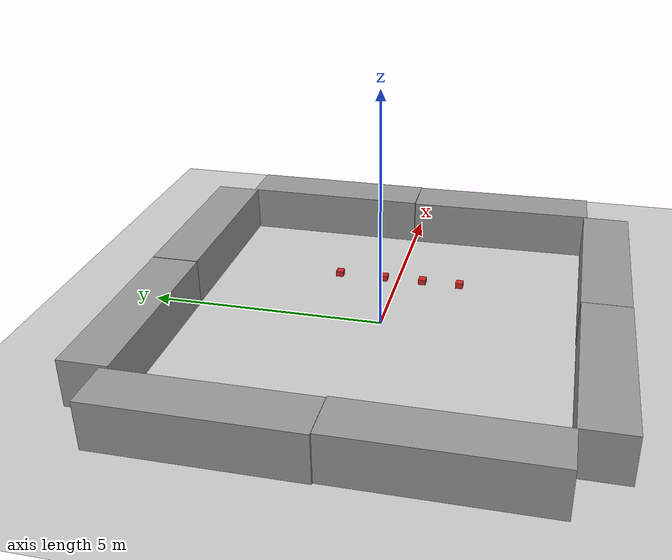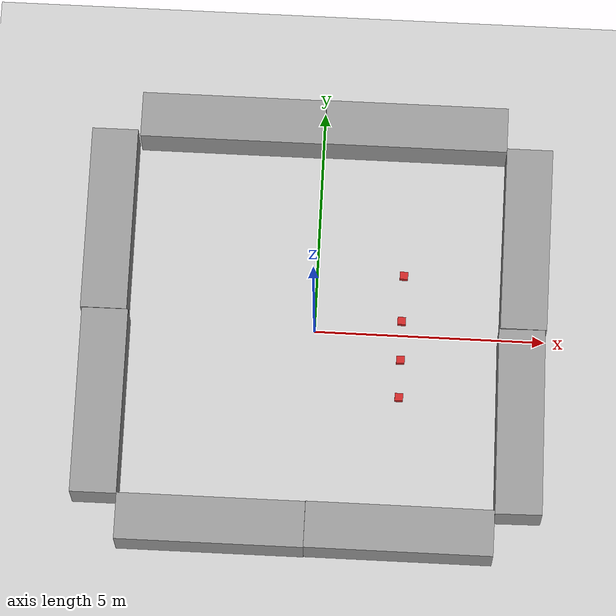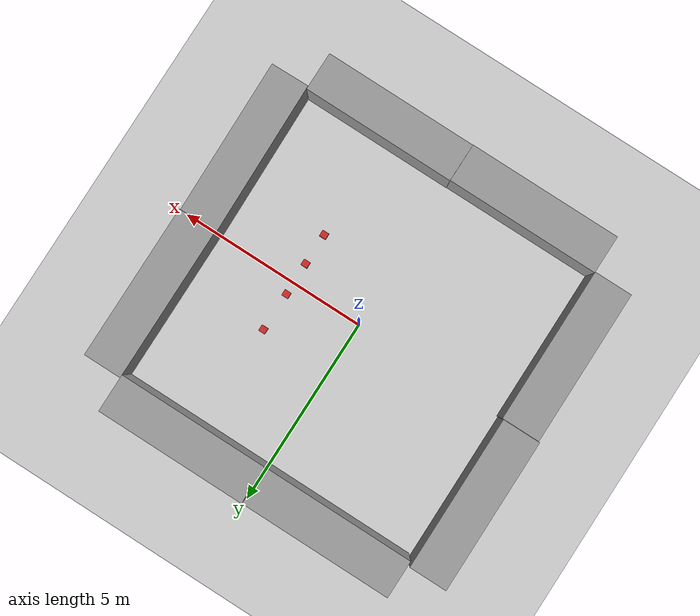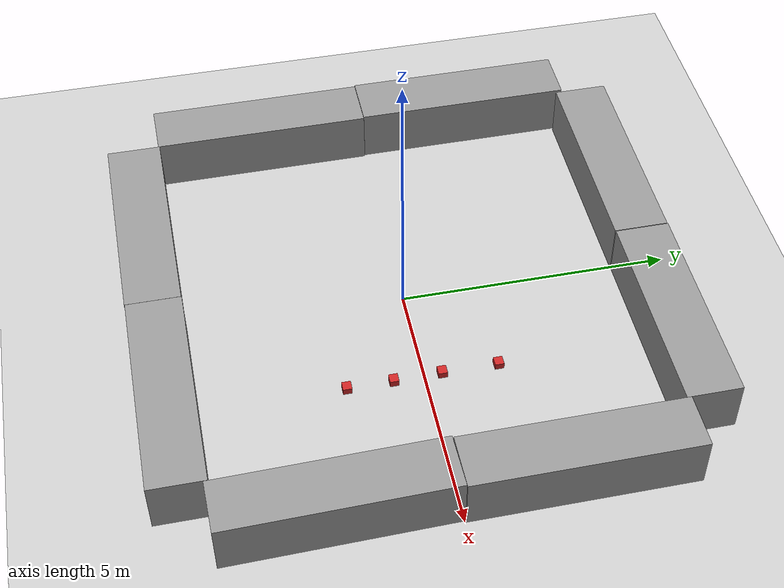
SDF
<sdf version="1.7">
 <world name="default">
  <light name="sun" type="directional">
   <cast_shadows>0</cast_shadows>
   <pose>0 0 10 0 -0 0</pose>
   <diffuse>0.8 0.8 0.8 1</diffuse>
   <specular>0.2 0.2 0.2 1</specular>
   <attenuation>
    <range>1000</range>
    <constant>0.9</constant>
    <linear>0.01</linear>
    <quadratic>0.001</quadratic>
   </attenuation>
   <direction>-0.5 0.1 -0.9</direction>
   <spot><inner_angle>0</inner_angle><outer_angle>0</outer_angle><falloff>0</falloff></spot>
  </light>
  <model name="ground_plane">
   <static>1</static>
   <link name="link">
    <collision name="collision">
     <geometry><plane><normal>0 0 1</normal><size>100 100</size></plane></geometry>
     <surface><friction><ode><mu>100</mu><mu2>50</mu2></ode></friction></surface>
    </collision>
    <visual name="visual">
     <cast_shadows>0</cast_shadows>
     <geometry><plane><normal>0 0 1</normal><size>100 100</size></plane></geometry>
     <material>
      <script><uri>file://media/materials/scripts/gazebo.material</uri><name>Gazebo/Grey</name></script>
     </material>
    </visual>
   </link>
  </model>
  <gravity>0 0 -9.8</gravity>
  <scene><ambient>0.4 0.4 0.4 1</ambient><background>0.7 0.7 0.7 1</background><shadows>1</shadows></scene>
  <magnetic_field>6e-06 2.3e-05 -4.2e-05</magnetic_field>
  <atmosphere type="adiabatic"/>
  <physics type="ode">
   <max_step_size>0.001</max_step_size>
   <real_time_factor>1</real_time_factor>
   <real_time_update_rate>1000</real_time_update_rate>
  </physics>
  <audio><device>default</device></audio>
  <spherical_coordinates>
   <surface_model>EARTH_WGS84</surface_model>
   <latitude_deg>0</latitude_deg>
   <longitude_deg>0</longitude_deg>
   <elevation>0</elevation>
   <heading_deg>0</heading_deg>
  </spherical_coordinates>
  <model name="unit_box">
   <pose>4.50376 -2.0294 0.499996 0 -7e-06 0.01618</pose>
   <link name="link">
    <inertial>
     <mass>1</mass>
     <inertia>
      <ixx>0.166667</ixx>
      <ixy>0</ixy>
      <ixz>0</ixz>
      <iyy>0.166667</iyy>
      <iyz>0</iyz>
      <izz>0.166667</izz>
     </inertia>
    </inertial>
    <collision name="collision"><geometry><box><size>1 4.0622 1</size></box></geometry></collision>
    <visual name="visual">
     <geometry><box><size>1 4.0622 1</size></box></geometry>
     <material>
      <script><name>Gazebo/Grey</name><uri>file://media/materials/scripts/gazebo.material</uri></script>
     </material>
    </visual>
   </link>
  </model>
  <model name="unit_box_clone">
   <pose>4.49996 2.04223 0.499196 0.000396 -0 6e-05</pose>
   <link name="link">
    <inertial>
     <mass>1</mass>
     <inertia>
      <ixx>0.166667</ixx>
      <ixy>0</ixy>
      <ixz>0</ixz>
      <iyy>0.166667</iyy>
      <iyz>0</iyz>
      <izz>0.166667</izz>
     </inertia>
    </inertial>
    <collision name="collision"><geometry><box><size>1 4.0622 1</size></box></geometry></collision>
    <visual name="visual">
     <geometry><box><size>1 4.0622 1</size></box></geometry>
     <material>
      <script><name>Gazebo/Grey</name><uri>file://media/materials/scripts/gazebo.material</uri></script>
     </material>
    </visual>
   </link>
  </model>
  <model name="unit_box_0">
   <pose>2.01554 4.49145 0.499283 0 0.000362 0.000101</pose>
   <link name="link">
    <inertial>
     <mass>1</mass>
     <inertia>
      <ixx>0.166667</ixx>
      <ixy>0</ixy>
      <ixz>0</ixz>
      <iyy>0.166667</iyy>
      <iyz>0</iyz>
      <izz>0.166667</izz>
     </inertia>
    </inertial>
    <collision name="collision"><geometry><box><size>3.96686 1 1</size></box></geometry></collision>
    <visual name="visual">
     <geometry><box><size>3.96686 1 1</size></box></geometry>
     <material>
      <script><name>Gazebo/Grey</name><uri>file://media/materials/scripts/gazebo.material</uri></script>
     </material>
    </visual>
   </link>
  </model>
  <model name="unit_box_0_clone">
   <pose>-1.99121 4.48227 0.499239 0 0.000379 4.7e-05</pose>
   <link name="link">
    <inertial>
     <mass>1</mass>
     <inertia>
      <ixx>0.166667</ixx>
      <ixy>0</ixy>
      <ixz>0</ixz>
      <iyy>0.166667</iyy>
      <iyz>0</iyz>
      <izz>0.166667</izz>
     </inertia>
    </inertial>
    <collision name="collision"><geometry><box><size>4.01582 1 1</size></box></geometry></collision>
    <visual name="visual">
     <geometry><box><size>4.01582 1 1</size></box></geometry>
     <material>
      <script><name>Gazebo/Grey</name><uri>file://media/materials/scripts/gazebo.material</uri></script>
     </material>
    </visual>
   </link>
  </model>
  <model name="unit_box_0_clone_clone">
   <pose>2.02177 -4.48876 0.499241 0 0.000378 -0.001285</pose>
   <link name="link">
    <inertial>
     <mass>1</mass>
     <inertia>
      <ixx>0.166667</ixx>
      <ixy>0</ixy>
      <ixz>0</ixz>
      <iyy>0.166667</iyy>
      <iyz>0</iyz>
      <izz>0.166667</izz>
     </inertia>
    </inertial>
    <collision name="collision"><geometry><box><size>4.01582 1 1</size></box></geometry></collision>
    <visual name="visual">
     <geometry><box><size>4.01582 1 1</size></box></geometry>
     <material>
      <script><name>Gazebo/Grey</name><uri>file://media/materials/scripts/gazebo.material</uri></script>
     </material>
    </visual>
   </link>
  </model>
  <model name="unit_box_clone_0">
   <pose>-4.50835 -1.98798 0.499196 0.000396 -0 0.0021</pose>
   <link name="link">
    <inertial>
     <mass>1</mass>
     <inertia>
      <ixx>0.166667</ixx>
      <ixy>0</ixy>
      <ixz>0</ixz>
      <iyy>0.166667</iyy>
      <iyz>0</iyz>
      <izz>0.166667</izz>
     </inertia>
    </inertial>
    <collision name="collision"><geometry><box><size>1 4.0622 1</size></box></geometry></collision>
    <visual name="visual">
     <geometry><box><size>1 4.0622 1</size></box></geometry>
     <material>
      <script><name>Gazebo/Grey</name><uri>file://media/materials/scripts/gazebo.material</uri></script>
     </material>
    </visual>
   </link>
  </model>
  <model name="unit_box_clone_1">
   <pose>-4.54977 2.08059 0.499196 0.000396 -0 0.001355</pose>
   <link name="link">
    <inertial>
     <mass>1</mass>
     <inertia>
      <ixx>0.166667</ixx>
      <ixy>0</ixy>
      <ixz>0</ixz>
      <iyy>0.166667</iyy>
      <iyz>0</iyz>
      <izz>0.166667</izz>
     </inertia>
    </inertial>
    <collision name="collision"><geometry><box><size>1 4.0622 1</size></box></geometry></collision>
    <visual name="visual">
     <geometry><box><size>1 4.0622 1</size></box></geometry>
     <material>
      <script><name>Gazebo/Grey</name><uri>file://media/materials/scripts/gazebo.material</uri></script>
     </material>
    </visual>
   </link>
  </model>
  <model name="unit_box_0_clone_clone_clone">
   <pose>-1.99469 -4.49466 0.499239 0 -0.000379 0.000102</pose>
   <link name="link">
    <inertial>
     <mass>1</mass>
     <inertia>
      <ixx>0.166667</ixx>
      <ixy>0</ixy>
      <ixz>0</ixz>
      <iyy>0.166667</iyy>
      <iyz>0</iyz>
      <izz>0.166667</izz>
     </inertia>
    </inertial>
    <collision name="collision"><geometry><box><size>4.01582 1 1</size></box></geometry></collision>
    <visual name="visual">
     <geometry><box><size>4.01582 1 1</size></box></geometry>
     <material>
      <script><name>Gazebo/Grey</name><uri>file://media/materials/scripts/gazebo.material</uri></script>
     </material>
    </visual>
   </link>
  </model>
  <model name="unit_box_1">
   <link name="link">
    <inertial>
     <mass>1</mass>
     <inertia>
      <ixx>0.166667</ixx>
      <ixy>0</ixy>
      <ixz>0</ixz>
      <iyy>0.166667</iyy>
      <iyz>0</iyz>
      <izz>0.166667</izz>
     </inertia>
    </inertial>
    <visual name="visual">
     <geometry><box><size>0.177426 0.164052 0.124949</size></box></geometry>
     <material>
      <script><name>Gazebo/Red</name><uri>file://media/materials/scripts/gazebo.material</uri></script>
      <shader type="pixel"><normal_map>__default__</normal_map></shader>
      <ambient>1 0 0 1</ambient>
      <diffuse>1 0 0 1</diffuse>
      <specular>0.1 0.1 0.1 1</specular>
      <emissive>0 0 0 1</emissive>
     </material>
    </visual>
    <collision name="collision">
     <geometry><box><size>0.177426 0.164052 0.124949</size></box></geometry>
     <surface>
      <friction>
       <ode><mu>1</mu><mu2>1</mu2><fdir1>0 0 0</fdir1><slip1>0</slip1><slip2>0</slip2></ode>
       <torsional>
        <coefficient>1</coefficient>
        <patch_radius>0</patch_radius>
        <surface_radius>0</surface_radius>
        <use_patch_radius>1</use_patch_radius>
        <ode><slip>0</slip></ode>
       </torsional>
      </friction>
      <bounce><restitution_coefficient>0</restitution_coefficient><threshold>1e+06</threshold></bounce>
      <contact>
       <collide_without_contact>0</collide_without_contact>
       <collide_without_contact_bitmask>1</collide_without_contact_bitmask>
       <collide_bitmask>1</collide_bitmask>
       <ode>
        <soft_cfm>0</soft_cfm>
        <soft_erp>0.2</soft_erp>
        <kp>1e+13</kp>
        <kd>1</kd>
        <max_vel>0.01</max_vel>
        <min_depth>0</min_depth>
       </ode>
       <bullet>
        <split_impulse>1</split_impulse>
        <split_impulse_penetration_threshold>-0.01</split_impulse_penetration_threshold>
        <soft_cfm>0</soft_cfm>
        <soft_erp>0.2</soft_erp>
        <kp>1e+13</kp>
        <kd>1</kd>
       </bullet>
      </contact>
     </surface>
    </collision>
   </link>
   <static>0</static>
   <pose>1.89349 -0.555688 0.062472 1e-06 -3e-06 -3e-06</pose>
  </model>
  <model name="unit_box_1_clone">
   <link name="link">
    <inertial>
     <mass>1</mass>
     <inertia>
      <ixx>0.166667</ixx>
      <ixy>0</ixy>
      <ixz>0</ixz>
      <iyy>0.166667</iyy>
      <iyz>0</iyz>
      <izz>0.166667</izz>
     </inertia>
    </inertial>
    <visual name="visual">
     <geometry><box><size>0.177426 0.164052 0.124949</size></box></geometry>
     <material>
      <script><name>Gazebo/Red</name><uri>file://media/materials/scripts/gazebo.material</uri></script>
      <shader type="pixel"><normal_map>__default__</normal_map></shader>
      <ambient>1 0 0 1</ambient>
      <diffuse>1 0 0 1</diffuse>
      <specular>0.1 0.1 0.1 1</specular>
      <emissive>0 0 0 1</emissive>
     </material>
    </visual>
    <collision name="collision">
     <geometry><box><size>0.177426 0.164052 0.124949</size></box></geometry>
     <surface>
      <friction>
       <ode><mu>1</mu><mu2>1</mu2><fdir1>0 0 0</fdir1><slip1>0</slip1><slip2>0</slip2></ode>
       <torsional>
        <coefficient>1</coefficient>
        <patch_radius>0</patch_radius>
        <surface_radius>0</surface_radius>
        <use_patch_radius>1</use_patch_radius>
        <ode><slip>0</slip></ode>
       </torsional>
      </friction>
      <bounce><restitution_coefficient>0</restitution_coefficient><threshold>1e+06</threshold></bounce>
      <contact>
       <collide_without_contact>0</collide_without_contact>
       <collide_without_contact_bitmask>1</collide_without_contact_bitmask>
       <collide_bitmask>1</collide_bitmask>
       <ode>
        <soft_cfm>0</soft_cfm>
        <soft_erp>0.2</soft_erp>
        <kp>1e+13</kp>
        <kd>1</kd>
        <max_vel>0.01</max_vel>
        <min_depth>0</min_depth>
       </ode>
       <bullet>
        <split_impulse>1</split_impulse>
        <split_impulse_penetration_threshold>-0.01</split_impulse_penetration_threshold>
        <soft_cfm>0</soft_cfm>
        <soft_erp>0.2</soft_erp>
        <kp>1e+13</kp>
        <kd>1</kd>
       </bullet>
      </contact>
     </surface>
    </collision>
   </link>
   <static>0</static>
   <pose>1.88316 0.318302 0.062472 1e-06 -3e-06 -3e-06</pose>
  </model>
  <model name="unit_box_1_clone_0">
   <link name="link">
    <inertial>
     <mass>1</mass>
     <inertia>
      <ixx>0.166667</ixx>
      <ixy>0</ixy>
      <ixz>0</ixz>
      <iyy>0.166667</iyy>
      <iyz>0</iyz>
      <izz>0.166667</izz>
     </inertia>
    </inertial>
    <visual name="visual">
     <geometry><box><size>0.177426 0.164052 0.124949</size></box></geometry>
     <material>
      <script><name>Gazebo/Red</name><uri>file://media/materials/scripts/gazebo.material</uri></script>
      <shader type="pixel"><normal_map>__default__</normal_map></shader>
      <ambient>1 0 0 1</ambient>
      <diffuse>1 0 0 1</diffuse>
      <specular>0.1 0.1 0.1 1</specular>
      <emissive>0 0 0 1</emissive>
     </material>
    </visual>
    <collision name="collision">
     <geometry><box><size>0.177426 0.164052 0.124949</size></box></geometry>
     <surface>
      <friction>
       <ode><mu>1</mu><mu2>1</mu2><fdir1>0 0 0</fdir1><slip1>0</slip1><slip2>0</slip2></ode>
       <torsional>
        <coefficient>1</coefficient>
        <patch_radius>0</patch_radius>
        <surface_radius>0</surface_radius>
        <use_patch_radius>1</use_patch_radius>
        <ode><slip>0</slip></ode>
       </torsional>
      </friction>
      <bounce><restitution_coefficient>0</restitution_coefficient><threshold>1e+06</threshold></bounce>
      <contact>
       <collide_without_contact>0</collide_without_contact>
       <collide_without_contact_bitmask>1</collide_without_contact_bitmask>
       <collide_bitmask>1</collide_bitmask>
       <ode>
        <soft_cfm>0</soft_cfm>
        <soft_erp>0.2</soft_erp>
        <kp>1e+13</kp>
        <kd>1</kd>
        <max_vel>0.01</max_vel>
        <min_depth>0</min_depth>
       </ode>
       <bullet>
        <split_impulse>1</split_impulse>
        <split_impulse_penetration_threshold>-0.01</split_impulse_penetration_threshold>
        <soft_cfm>0</soft_cfm>
        <soft_erp>0.2</soft_erp>
        <kp>1e+13</kp>
        <kd>1</kd>
       </bullet>
      </contact>
     </surface>
    </collision>
   </link>
   <static>0</static>
   <pose>1.88731 1.34266 0.062472 1e-06 -3e-06 -3e-06</pose>
  </model>
  <model name="unit_box_1_clone_1">
   <link name="link">
    <inertial>
     <mass>1</mass>
     <inertia>
      <ixx>0.166667</ixx>
      <ixy>0</ixy>
      <ixz>0</ixz>
      <iyy>0.166667</iyy>
      <iyz>0</iyz>
      <izz>0.166667</izz>
     </inertia>
    </inertial>
    <visual name="visual">
     <geometry><box><size>0.177426 0.164052 0.124949</size></box></geometry>
     <material>
      <script><name>Gazebo/Red</name><uri>file://media/materials/scripts/gazebo.material</uri></script>
      <shader type="pixel"><normal_map>__default__</normal_map></shader>
      <ambient>1 0 0 1</ambient>
      <diffuse>1 0 0 1</diffuse>
      <specular>0.1 0.1 0.1 1</specular>
      <emissive>0 0 0 1</emissive>
     </material>
    </visual>
    <collision name="collision">
     <geometry><box><size>0.177426 0.164052 0.124949</size></box></geometry>
     <surface>
      <friction>
       <ode><mu>1</mu><mu2>1</mu2><fdir1>0 0 0</fdir1><slip1>0</slip1><slip2>0</slip2></ode>
       <torsional>
        <coefficient>1</coefficient>
        <patch_radius>0</patch_radius>
        <surface_radius>0</surface_radius>
        <use_patch_radius>1</use_patch_radius>
        <ode><slip>0</slip></ode>
       </torsional>
      </friction>
      <bounce><restitution_coefficient>0</restitution_coefficient><threshold>1e+06</threshold></bounce>
      <contact>
       <collide_without_contact>0</collide_without_contact>
       <collide_without_contact_bitmask>1</collide_without_contact_bitmask>
       <collide_bitmask>1</collide_bitmask>
       <ode>
        <soft_cfm>0</soft_cfm>
        <soft_erp>0.2</soft_erp>
        <kp>1e+13</kp>
        <kd>1</kd>
        <max_vel>0.01</max_vel>
        <min_depth>0</min_depth>
       </ode>
       <bullet>
        <split_impulse>1</split_impulse>
        <split_impulse_penetration_threshold>-0.01</split_impulse_penetration_threshold>
        <soft_cfm>0</soft_cfm>
        <soft_erp>0.2</soft_erp>
        <kp>1e+13</kp>
        <kd>1</kd>
       </bullet>
      </contact>
     </surface>
    </collision>
   </link>
   <static>0</static>
   <pose>1.89563 -1.39252 0.062472 1e-06 -3e-06 -3e-06</pose>
  </model>
 </world>
</sdf>
